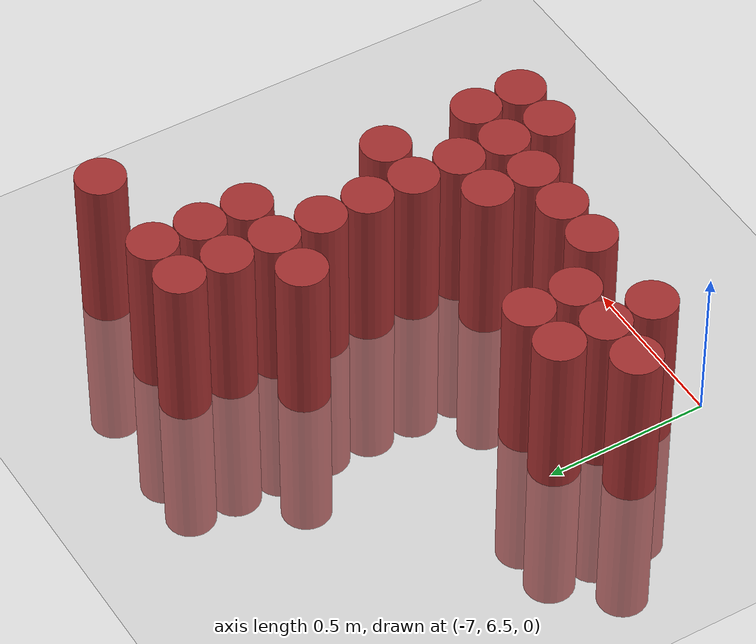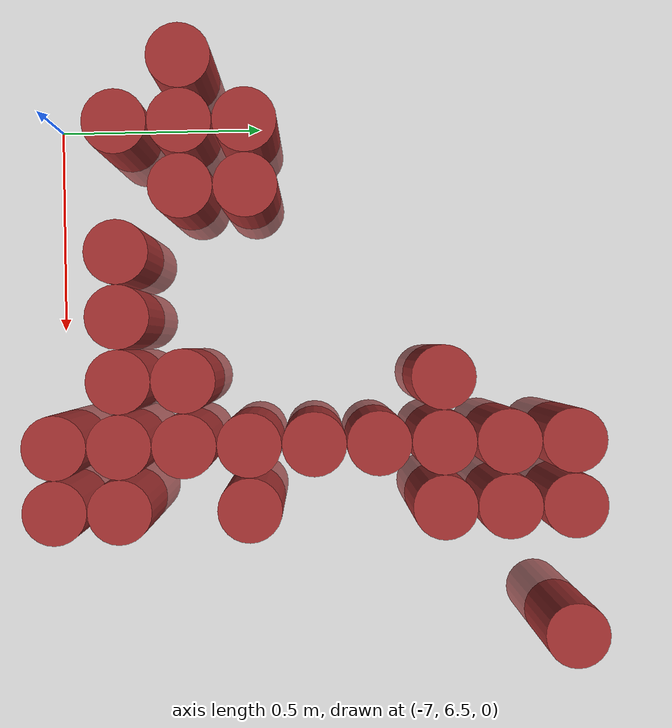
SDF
<sdf version="1.6">
 <world name="default">
  <model name="ground_plane">
   <static>1</static>
   <link name="link">
    <collision name="collision">
     <geometry><plane><normal>0 0 1</normal><size>100 100</size></plane></geometry>
     <surface><friction><ode><mu>100</mu><mu2>50</mu2></ode></friction></surface>
    </collision>
    <visual name="visual">
     <cast_shadows>0</cast_shadows>
     <geometry><plane><normal>0 0 1</normal><size>100 100</size></plane></geometry>
     <material>
      <script><uri>file://media/materials/scripts/gazebo.material</uri><name>Gazebo/Grey</name></script>
     </material>
    </visual>
   </link>
  </model>
  <model name="unit_cylinder_202">
   <static>1</static>
   <pose>-7.125000 6.825000 0.000000 0.000000 0.000000 0.000000</pose>
   <link name="link">
    <inertial>
     <mass>1</mass>
     <inertia><ixx>0.145833</ixx><ixy>0</ixy><ixz>0</ixz><iyy>0.145833</iyy><iyz>0</iyz><izz>0.125</izz></inertia>
    </inertial>
    <collision name="collision">
     <geometry><cylinder><radius>0.075000</radius><length>1</length></cylinder></geometry>
    </collision>
    <visual name="visual">
     <geometry><cylinder><radius>0.075000</radius><length>1</length></cylinder></geometry>
     <material>
      <ambient>0.648000 0.192000 0.192000 1</ambient>
      <diffuse>0.648000 0.192000 0.192000 1</diffuse>
     </material>
     <material>
      <script><name>Gazebo/Grey</name><uri>file://media/materials/scripts/gazebo.material</uri></script>
     </material>
    </visual>
   </link>
  </model>
  <model name="unit_cylinder_206">
   <static>1</static>
   <pose>-6.975000 6.675000 0.000000 0.000000 0.000000 0.000000</pose>
   <link name="link">
    <inertial>
     <mass>1</mass>
     <inertia><ixx>0.145833</ixx><ixy>0</ixy><ixz>0</ixz><iyy>0.145833</iyy><iyz>0</iyz><izz>0.125</izz></inertia>
    </inertial>
    <collision name="collision">
     <geometry><cylinder><radius>0.075000</radius><length>1</length></cylinder></geometry>
    </collision>
    <visual name="visual">
     <geometry><cylinder><radius>0.075000</radius><length>1</length></cylinder></geometry>
     <material>
      <ambient>0.648000 0.192000 0.192000 1</ambient>
      <diffuse>0.648000 0.192000 0.192000 1</diffuse>
     </material>
     <material>
      <script><name>Gazebo/Grey</name><uri>file://media/materials/scripts/gazebo.material</uri></script>
     </material>
    </visual>
   </link>
  </model>
  <model name="unit_cylinder_207">
   <static>1</static>
   <pose>-6.975000 6.825000 0.000000 0.000000 0.000000 0.000000</pose>
   <link name="link">
    <inertial>
     <mass>1</mass>
     <inertia><ixx>0.145833</ixx><ixy>0</ixy><ixz>0</ixz><iyy>0.145833</iyy><iyz>0</iyz><izz>0.125</izz></inertia>
    </inertial>
    <collision name="collision">
     <geometry><cylinder><radius>0.075000</radius><length>1</length></cylinder></geometry>
    </collision>
    <visual name="visual">
     <geometry><cylinder><radius>0.075000</radius><length>1</length></cylinder></geometry>
     <material>
      <ambient>0.648000 0.192000 0.192000 1</ambient>
      <diffuse>0.648000 0.192000 0.192000 1</diffuse>
     </material>
     <material>
      <script><name>Gazebo/Grey</name><uri>file://media/materials/scripts/gazebo.material</uri></script>
     </material>
    </visual>
   </link>
  </model>
  <model name="unit_cylinder_208">
   <static>1</static>
   <pose>-6.975000 6.975000 0.000000 0.000000 0.000000 0.000000</pose>
   <link name="link">
    <inertial>
     <mass>1</mass>
     <inertia><ixx>0.145833</ixx><ixy>0</ixy><ixz>0</ixz><iyy>0.145833</iyy><iyz>0</iyz><izz>0.125</izz></inertia>
    </inertial>
    <collision name="collision">
     <geometry><cylinder><radius>0.075000</radius><length>1</length></cylinder></geometry>
    </collision>
    <visual name="visual">
     <geometry><cylinder><radius>0.075000</radius><length>1</length></cylinder></geometry>
     <material>
      <ambient>0.648000 0.192000 0.192000 1</ambient>
      <diffuse>0.648000 0.192000 0.192000 1</diffuse>
     </material>
     <material>
      <script><name>Gazebo/Grey</name><uri>file://media/materials/scripts/gazebo.material</uri></script>
     </material>
    </visual>
   </link>
  </model>
  <model name="unit_cylinder_213">
   <static>1</static>
   <pose>-6.825000 6.825000 0.000000 0.000000 0.000000 0.000000</pose>
   <link name="link">
    <inertial>
     <mass>1</mass>
     <inertia><ixx>0.145833</ixx><ixy>0</ixy><ixz>0</ixz><iyy>0.145833</iyy><iyz>0</iyz><izz>0.125</izz></inertia>
    </inertial>
    <collision name="collision">
     <geometry><cylinder><radius>0.075000</radius><length>1</length></cylinder></geometry>
    </collision>
    <visual name="visual">
     <geometry><cylinder><radius>0.075000</radius><length>1</length></cylinder></geometry>
     <material>
      <ambient>0.648000 0.192000 0.192000 1</ambient>
      <diffuse>0.648000 0.192000 0.192000 1</diffuse>
     </material>
     <material>
      <script><name>Gazebo/Grey</name><uri>file://media/materials/scripts/gazebo.material</uri></script>
     </material>
    </visual>
   </link>
  </model>
  <model name="unit_cylinder_214">
   <static>1</static>
   <pose>-6.825000 6.975000 0.000000 0.000000 0.000000 0.000000</pose>
   <link name="link">
    <inertial>
     <mass>1</mass>
     <inertia><ixx>0.145833</ixx><ixy>0</ixy><ixz>0</ixz><iyy>0.145833</iyy><iyz>0</iyz><izz>0.125</izz></inertia>
    </inertial>
    <collision name="collision">
     <geometry><cylinder><radius>0.075000</radius><length>1</length></cylinder></geometry>
    </collision>
    <visual name="visual">
     <geometry><cylinder><radius>0.075000</radius><length>1</length></cylinder></geometry>
     <material>
      <ambient>0.648000 0.192000 0.192000 1</ambient>
      <diffuse>0.648000 0.192000 0.192000 1</diffuse>
     </material>
     <material>
      <script><name>Gazebo/Grey</name><uri>file://media/materials/scripts/gazebo.material</uri></script>
     </material>
    </visual>
   </link>
  </model>
  <model name="unit_cylinder_218">
   <static>1</static>
   <pose>-6.675000 6.675000 0.000000 0.000000 0.000000 0.000000</pose>
   <link name="link">
    <inertial>
     <mass>1</mass>
     <inertia><ixx>0.145833</ixx><ixy>0</ixy><ixz>0</ixz><iyy>0.145833</iyy><iyz>0</iyz><izz>0.125</izz></inertia>
    </inertial>
    <collision name="collision">
     <geometry><cylinder><radius>0.075000</radius><length>1</length></cylinder></geometry>
    </collision>
    <visual name="visual">
     <geometry><cylinder><radius>0.075000</radius><length>1</length></cylinder></geometry>
     <material>
      <ambient>0.648000 0.192000 0.192000 1</ambient>
      <diffuse>0.648000 0.192000 0.192000 1</diffuse>
     </material>
     <material>
      <script><name>Gazebo/Grey</name><uri>file://media/materials/scripts/gazebo.material</uri></script>
     </material>
    </visual>
   </link>
  </model>
  <model name="unit_cylinder_222">
   <static>1</static>
   <pose>-6.525000 6.675000 0.000000 0.000000 0.000000 0.000000</pose>
   <link name="link">
    <inertial>
     <mass>1</mass>
     <inertia><ixx>0.145833</ixx><ixy>0</ixy><ixz>0</ixz><iyy>0.145833</iyy><iyz>0</iyz><izz>0.125</izz></inertia>
    </inertial>
    <collision name="collision">
     <geometry><cylinder><radius>0.075000</radius><length>1</length></cylinder></geometry>
    </collision>
    <visual name="visual">
     <geometry><cylinder><radius>0.075000</radius><length>1</length></cylinder></geometry>
     <material>
      <ambient>0.648000 0.192000 0.192000 1</ambient>
      <diffuse>0.648000 0.192000 0.192000 1</diffuse>
     </material>
     <material>
      <script><name>Gazebo/Grey</name><uri>file://media/materials/scripts/gazebo.material</uri></script>
     </material>
    </visual>
   </link>
  </model>
  <model name="unit_cylinder_228">
   <static>1</static>
   <pose>-6.375000 6.675000 0.000000 0.000000 0.000000 0.000000</pose>
   <link name="link">
    <inertial>
     <mass>1</mass>
     <inertia><ixx>0.145833</ixx><ixy>0</ixy><ixz>0</ixz><iyy>0.145833</iyy><iyz>0</iyz><izz>0.125</izz></inertia>
    </inertial>
    <collision name="collision">
     <geometry><cylinder><radius>0.075000</radius><length>1</length></cylinder></geometry>
    </collision>
    <visual name="visual">
     <geometry><cylinder><radius>0.075000</radius><length>1</length></cylinder></geometry>
     <material>
      <ambient>0.648000 0.192000 0.192000 1</ambient>
      <diffuse>0.648000 0.192000 0.192000 1</diffuse>
     </material>
     <material>
      <script><name>Gazebo/Grey</name><uri>file://media/materials/scripts/gazebo.material</uri></script>
     </material>
    </visual>
   </link>
  </model>
  <model name="unit_cylinder_229">
   <static>1</static>
   <pose>-6.375000 6.825000 0.000000 0.000000 0.000000 0.000000</pose>
   <link name="link">
    <inertial>
     <mass>1</mass>
     <inertia><ixx>0.145833</ixx><ixy>0</ixy><ixz>0</ixz><iyy>0.145833</iyy><iyz>0</iyz><izz>0.125</izz></inertia>
    </inertial>
    <collision name="collision">
     <geometry><cylinder><radius>0.075000</radius><length>1</length></cylinder></geometry>
    </collision>
    <visual name="visual">
     <geometry><cylinder><radius>0.075000</radius><length>1</length></cylinder></geometry>
     <material>
      <ambient>0.648000 0.192000 0.192000 1</ambient>
      <diffuse>0.648000 0.192000 0.192000 1</diffuse>
     </material>
     <material>
      <script><name>Gazebo/Grey</name><uri>file://media/materials/scripts/gazebo.material</uri></script>
     </material>
    </visual>
   </link>
  </model>
  <model name="unit_cylinder_230">
   <static>1</static>
   <pose>-6.375000 7.425000 0.000000 0.000000 0.000000 0.000000</pose>
   <link name="link">
    <inertial>
     <mass>1</mass>
     <inertia><ixx>0.145833</ixx><ixy>0</ixy><ixz>0</ixz><iyy>0.145833</iyy><iyz>0</iyz><izz>0.125</izz></inertia>
    </inertial>
    <collision name="collision">
     <geometry><cylinder><radius>0.075000</radius><length>1</length></cylinder></geometry>
    </collision>
    <visual name="visual">
     <geometry><cylinder><radius>0.075000</radius><length>1</length></cylinder></geometry>
     <material>
      <ambient>0.648000 0.192000 0.192000 1</ambient>
      <diffuse>0.648000 0.192000 0.192000 1</diffuse>
     </material>
     <material>
      <script><name>Gazebo/Grey</name><uri>file://media/materials/scripts/gazebo.material</uri></script>
     </material>
    </visual>
   </link>
  </model>
  <model name="unit_cylinder_234">
   <static>1</static>
   <pose>-6.225000 6.525000 0.000000 0.000000 0.000000 0.000000</pose>
   <link name="link">
    <inertial>
     <mass>1</mass>
     <inertia><ixx>0.145833</ixx><ixy>0</ixy><ixz>0</ixz><iyy>0.145833</iyy><iyz>0</iyz><izz>0.125</izz></inertia>
    </inertial>
    <collision name="collision">
     <geometry><cylinder><radius>0.075000</radius><length>1</length></cylinder></geometry>
    </collision>
    <visual name="visual">
     <geometry><cylinder><radius>0.075000</radius><length>1</length></cylinder></geometry>
     <material>
      <ambient>0.648000 0.192000 0.192000 1</ambient>
      <diffuse>0.648000 0.192000 0.192000 1</diffuse>
     </material>
     <material>
      <script><name>Gazebo/Grey</name><uri>file://media/materials/scripts/gazebo.material</uri></script>
     </material>
    </visual>
   </link>
  </model>
  <model name="unit_cylinder_235">
   <static>1</static>
   <pose>-6.225000 6.675000 0.000000 0.000000 0.000000 0.000000</pose>
   <link name="link">
    <inertial>
     <mass>1</mass>
     <inertia><ixx>0.145833</ixx><ixy>0</ixy><ixz>0</ixz><iyy>0.145833</iyy><iyz>0</iyz><izz>0.125</izz></inertia>
    </inertial>
    <collision name="collision">
     <geometry><cylinder><radius>0.075000</radius><length>1</length></cylinder></geometry>
    </collision>
    <visual name="visual">
     <geometry><cylinder><radius>0.075000</radius><length>1</length></cylinder></geometry>
     <material>
      <ambient>0.648000 0.192000 0.192000 1</ambient>
      <diffuse>0.648000 0.192000 0.192000 1</diffuse>
     </material>
     <material>
      <script><name>Gazebo/Grey</name><uri>file://media/materials/scripts/gazebo.material</uri></script>
     </material>
    </visual>
   </link>
  </model>
  <model name="unit_cylinder_236">
   <static>1</static>
   <pose>-6.225000 6.825000 0.000000 0.000000 0.000000 0.000000</pose>
   <link name="link">
    <inertial>
     <mass>1</mass>
     <inertia><ixx>0.145833</ixx><ixy>0</ixy><ixz>0</ixz><iyy>0.145833</iyy><iyz>0</iyz><izz>0.125</izz></inertia>
    </inertial>
    <collision name="collision">
     <geometry><cylinder><radius>0.075000</radius><length>1</length></cylinder></geometry>
    </collision>
    <visual name="visual">
     <geometry><cylinder><radius>0.075000</radius><length>1</length></cylinder></geometry>
     <material>
      <ambient>0.648000 0.192000 0.192000 1</ambient>
      <diffuse>0.648000 0.192000 0.192000 1</diffuse>
     </material>
     <material>
      <script><name>Gazebo/Grey</name><uri>file://media/materials/scripts/gazebo.material</uri></script>
     </material>
    </visual>
   </link>
  </model>
  <model name="unit_cylinder_237">
   <static>1</static>
   <pose>-6.225000 6.975000 0.000000 0.000000 0.000000 0.000000</pose>
   <link name="link">
    <inertial>
     <mass>1</mass>
     <inertia><ixx>0.145833</ixx><ixy>0</ixy><ixz>0</ixz><iyy>0.145833</iyy><iyz>0</iyz><izz>0.125</izz></inertia>
    </inertial>
    <collision name="collision">
     <geometry><cylinder><radius>0.075000</radius><length>1</length></cylinder></geometry>
    </collision>
    <visual name="visual">
     <geometry><cylinder><radius>0.075000</radius><length>1</length></cylinder></geometry>
     <material>
      <ambient>0.648000 0.192000 0.192000 1</ambient>
      <diffuse>0.648000 0.192000 0.192000 1</diffuse>
     </material>
     <material>
      <script><name>Gazebo/Grey</name><uri>file://media/materials/scripts/gazebo.material</uri></script>
     </material>
    </visual>
   </link>
  </model>
  <model name="unit_cylinder_238">
   <static>1</static>
   <pose>-6.225000 7.125000 0.000000 0.000000 0.000000 0.000000</pose>
   <link name="link">
    <inertial>
     <mass>1</mass>
     <inertia><ixx>0.145833</ixx><ixy>0</ixy><ixz>0</ixz><iyy>0.145833</iyy><iyz>0</iyz><izz>0.125</izz></inertia>
    </inertial>
    <collision name="collision">
     <geometry><cylinder><radius>0.075000</radius><length>1</length></cylinder></geometry>
    </collision>
    <visual name="visual">
     <geometry><cylinder><radius>0.075000</radius><length>1</length></cylinder></geometry>
     <material>
      <ambient>0.648000 0.192000 0.192000 1</ambient>
      <diffuse>0.648000 0.192000 0.192000 1</diffuse>
     </material>
     <material>
      <script><name>Gazebo/Grey</name><uri>file://media/materials/scripts/gazebo.material</uri></script>
     </material>
    </visual>
   </link>
  </model>
  <model name="unit_cylinder_239">
   <static>1</static>
   <pose>-6.225000 7.275000 0.000000 0.000000 0.000000 0.000000</pose>
   <link name="link">
    <inertial>
     <mass>1</mass>
     <inertia><ixx>0.145833</ixx><ixy>0</ixy><ixz>0</ixz><iyy>0.145833</iyy><iyz>0</iyz><izz>0.125</izz></inertia>
    </inertial>
    <collision name="collision">
     <geometry><cylinder><radius>0.075000</radius><length>1</length></cylinder></geometry>
    </collision>
    <visual name="visual">
     <geometry><cylinder><radius>0.075000</radius><length>1</length></cylinder></geometry>
     <material>
      <ambient>0.648000 0.192000 0.192000 1</ambient>
      <diffuse>0.648000 0.192000 0.192000 1</diffuse>
     </material>
     <material>
      <script><name>Gazebo/Grey</name><uri>file://media/materials/scripts/gazebo.material</uri></script>
     </material>
    </visual>
   </link>
  </model>
  <model name="unit_cylinder_240">
   <static>1</static>
   <pose>-6.225000 7.425000 0.000000 0.000000 0.000000 0.000000</pose>
   <link name="link">
    <inertial>
     <mass>1</mass>
     <inertia><ixx>0.145833</ixx><ixy>0</ixy><ixz>0</ixz><iyy>0.145833</iyy><iyz>0</iyz><izz>0.125</izz></inertia>
    </inertial>
    <collision name="collision">
     <geometry><cylinder><radius>0.075000</radius><length>1</length></cylinder></geometry>
    </collision>
    <visual name="visual">
     <geometry><cylinder><radius>0.075000</radius><length>1</length></cylinder></geometry>
     <material>
      <ambient>0.648000 0.192000 0.192000 1</ambient>
      <diffuse>0.648000 0.192000 0.192000 1</diffuse>
     </material>
     <material>
      <script><name>Gazebo/Grey</name><uri>file://media/materials/scripts/gazebo.material</uri></script>
     </material>
    </visual>
   </link>
  </model>
  <model name="unit_cylinder_241">
   <static>1</static>
   <pose>-6.225000 7.575000 0.000000 0.000000 0.000000 0.000000</pose>
   <link name="link">
    <inertial>
     <mass>1</mass>
     <inertia><ixx>0.145833</ixx><ixy>0</ixy><ixz>0</ixz><iyy>0.145833</iyy><iyz>0</iyz><izz>0.125</izz></inertia>
    </inertial>
    <collision name="collision">
     <geometry><cylinder><radius>0.075000</radius><length>1</length></cylinder></geometry>
    </collision>
    <visual name="visual">
     <geometry><cylinder><radius>0.075000</radius><length>1</length></cylinder></geometry>
     <material>
      <ambient>0.648000 0.192000 0.192000 1</ambient>
      <diffuse>0.648000 0.192000 0.192000 1</diffuse>
     </material>
     <material>
      <script><name>Gazebo/Grey</name><uri>file://media/materials/scripts/gazebo.material</uri></script>
     </material>
    </visual>
   </link>
  </model>
  <model name="unit_cylinder_242">
   <static>1</static>
   <pose>-6.225000 7.725000 0.000000 0.000000 0.000000 0.000000</pose>
   <link name="link">
    <inertial>
     <mass>1</mass>
     <inertia><ixx>0.145833</ixx><ixy>0</ixy><ixz>0</ixz><iyy>0.145833</iyy><iyz>0</iyz><izz>0.125</izz></inertia>
    </inertial>
    <collision name="collision">
     <geometry><cylinder><radius>0.075000</radius><length>1</length></cylinder></geometry>
    </collision>
    <visual name="visual">
     <geometry><cylinder><radius>0.075000</radius><length>1</length></cylinder></geometry>
     <material>
      <ambient>0.648000 0.192000 0.192000 1</ambient>
      <diffuse>0.648000 0.192000 0.192000 1</diffuse>
     </material>
     <material>
      <script><name>Gazebo/Grey</name><uri>file://media/materials/scripts/gazebo.material</uri></script>
     </material>
    </visual>
   </link>
  </model>
  <model name="unit_cylinder_248">
   <static>1</static>
   <pose>-6.075000 6.525000 0.000000 0.000000 0.000000 0.000000</pose>
   <link name="link">
    <inertial>
     <mass>1</mass>
     <inertia><ixx>0.145833</ixx><ixy>0</ixy><ixz>0</ixz><iyy>0.145833</iyy><iyz>0</iyz><izz>0.125</izz></inertia>
    </inertial>
    <collision name="collision">
     <geometry><cylinder><radius>0.075000</radius><length>1</length></cylinder></geometry>
    </collision>
    <visual name="visual">
     <geometry><cylinder><radius>0.075000</radius><length>1</length></cylinder></geometry>
     <material>
      <ambient>0.648000 0.192000 0.192000 1</ambient>
      <diffuse>0.648000 0.192000 0.192000 1</diffuse>
     </material>
     <material>
      <script><name>Gazebo/Grey</name><uri>file://media/materials/scripts/gazebo.material</uri></script>
     </material>
    </visual>
   </link>
  </model>
  <model name="unit_cylinder_249">
   <static>1</static>
   <pose>-6.075000 6.675000 0.000000 0.000000 0.000000 0.000000</pose>
   <link name="link">
    <inertial>
     <mass>1</mass>
     <inertia><ixx>0.145833</ixx><ixy>0</ixy><ixz>0</ixz><iyy>0.145833</iyy><iyz>0</iyz><izz>0.125</izz></inertia>
    </inertial>
    <collision name="collision">
     <geometry><cylinder><radius>0.075000</radius><length>1</length></cylinder></geometry>
    </collision>
    <visual name="visual">
     <geometry><cylinder><radius>0.075000</radius><length>1</length></cylinder></geometry>
     <material>
      <ambient>0.648000 0.192000 0.192000 1</ambient>
      <diffuse>0.648000 0.192000 0.192000 1</diffuse>
     </material>
     <material>
      <script><name>Gazebo/Grey</name><uri>file://media/materials/scripts/gazebo.material</uri></script>
     </material>
    </visual>
   </link>
  </model>
  <model name="unit_cylinder_250">
   <static>1</static>
   <pose>-6.075000 6.975000 0.000000 0.000000 0.000000 0.000000</pose>
   <link name="link">
    <inertial>
     <mass>1</mass>
     <inertia><ixx>0.145833</ixx><ixy>0</ixy><ixz>0</ixz><iyy>0.145833</iyy><iyz>0</iyz><izz>0.125</izz></inertia>
    </inertial>
    <collision name="collision">
     <geometry><cylinder><radius>0.075000</radius><length>1</length></cylinder></geometry>
    </collision>
    <visual name="visual">
     <geometry><cylinder><radius>0.075000</radius><length>1</length></cylinder></geometry>
     <material>
      <ambient>0.648000 0.192000 0.192000 1</ambient>
      <diffuse>0.648000 0.192000 0.192000 1</diffuse>
     </material>
     <material>
      <script><name>Gazebo/Grey</name><uri>file://media/materials/scripts/gazebo.material</uri></script>
     </material>
    </visual>
   </link>
  </model>
  <model name="unit_cylinder_251">
   <static>1</static>
   <pose>-6.075000 7.425000 0.000000 0.000000 0.000000 0.000000</pose>
   <link name="link">
    <inertial>
     <mass>1</mass>
     <inertia><ixx>0.145833</ixx><ixy>0</ixy><ixz>0</ixz><iyy>0.145833</iyy><iyz>0</iyz><izz>0.125</izz></inertia>
    </inertial>
    <collision name="collision">
     <geometry><cylinder><radius>0.075000</radius><length>1</length></cylinder></geometry>
    </collision>
    <visual name="visual">
     <geometry><cylinder><radius>0.075000</radius><length>1</length></cylinder></geometry>
     <material>
      <ambient>0.648000 0.192000 0.192000 1</ambient>
      <diffuse>0.648000 0.192000 0.192000 1</diffuse>
     </material>
     <material>
      <script><name>Gazebo/Grey</name><uri>file://media/materials/scripts/gazebo.material</uri></script>
     </material>
    </visual>
   </link>
  </model>
  <model name="unit_cylinder_252">
   <static>1</static>
   <pose>-6.075000 7.575000 0.000000 0.000000 0.000000 0.000000</pose>
   <link name="link">
    <inertial>
     <mass>1</mass>
     <inertia><ixx>0.145833</ixx><ixy>0</ixy><ixz>0</ixz><iyy>0.145833</iyy><iyz>0</iyz><izz>0.125</izz></inertia>
    </inertial>
    <collision name="collision">
     <geometry><cylinder><radius>0.075000</radius><length>1</length></cylinder></geometry>
    </collision>
    <visual name="visual">
     <geometry><cylinder><radius>0.075000</radius><length>1</length></cylinder></geometry>
     <material>
      <ambient>0.648000 0.192000 0.192000 1</ambient>
      <diffuse>0.648000 0.192000 0.192000 1</diffuse>
     </material>
     <material>
      <script><name>Gazebo/Grey</name><uri>file://media/materials/scripts/gazebo.material</uri></script>
     </material>
    </visual>
   </link>
  </model>
  <model name="unit_cylinder_253">
   <static>1</static>
   <pose>-6.075000 7.725000 0.000000 0.000000 0.000000 0.000000</pose>
   <link name="link">
    <inertial>
     <mass>1</mass>
     <inertia><ixx>0.145833</ixx><ixy>0</ixy><ixz>0</ixz><iyy>0.145833</iyy><iyz>0</iyz><izz>0.125</izz></inertia>
    </inertial>
    <collision name="collision">
     <geometry><cylinder><radius>0.075000</radius><length>1</length></cylinder></geometry>
    </collision>
    <visual name="visual">
     <geometry><cylinder><radius>0.075000</radius><length>1</length></cylinder></geometry>
     <material>
      <ambient>0.648000 0.192000 0.192000 1</ambient>
      <diffuse>0.648000 0.192000 0.192000 1</diffuse>
     </material>
     <material>
      <script><name>Gazebo/Grey</name><uri>file://media/materials/scripts/gazebo.material</uri></script>
     </material>
    </visual>
   </link>
  </model>
  <model name="unit_cylinder_269">
   <static>1</static>
   <pose>-5.775000 7.725000 0.000000 0.000000 0.000000 0.000000</pose>
   <link name="link">
    <inertial>
     <mass>1</mass>
     <inertia><ixx>0.145833</ixx><ixy>0</ixy><ixz>0</ixz><iyy>0.145833</iyy><iyz>0</iyz><izz>0.125</izz></inertia>
    </inertial>
    <collision name="collision">
     <geometry><cylinder><radius>0.075000</radius><length>1</length></cylinder></geometry>
    </collision>
    <visual name="visual">
     <geometry><cylinder><radius>0.075000</radius><length>1</length></cylinder></geometry>
     <material>
      <ambient>0.648000 0.192000 0.192000 1</ambient>
      <diffuse>0.648000 0.192000 0.192000 1</diffuse>
     </material>
     <material>
      <script><name>Gazebo/Grey</name><uri>file://media/materials/scripts/gazebo.material</uri></script>
     </material>
    </visual>
   </link>
  </model>
 </world>
</sdf>
